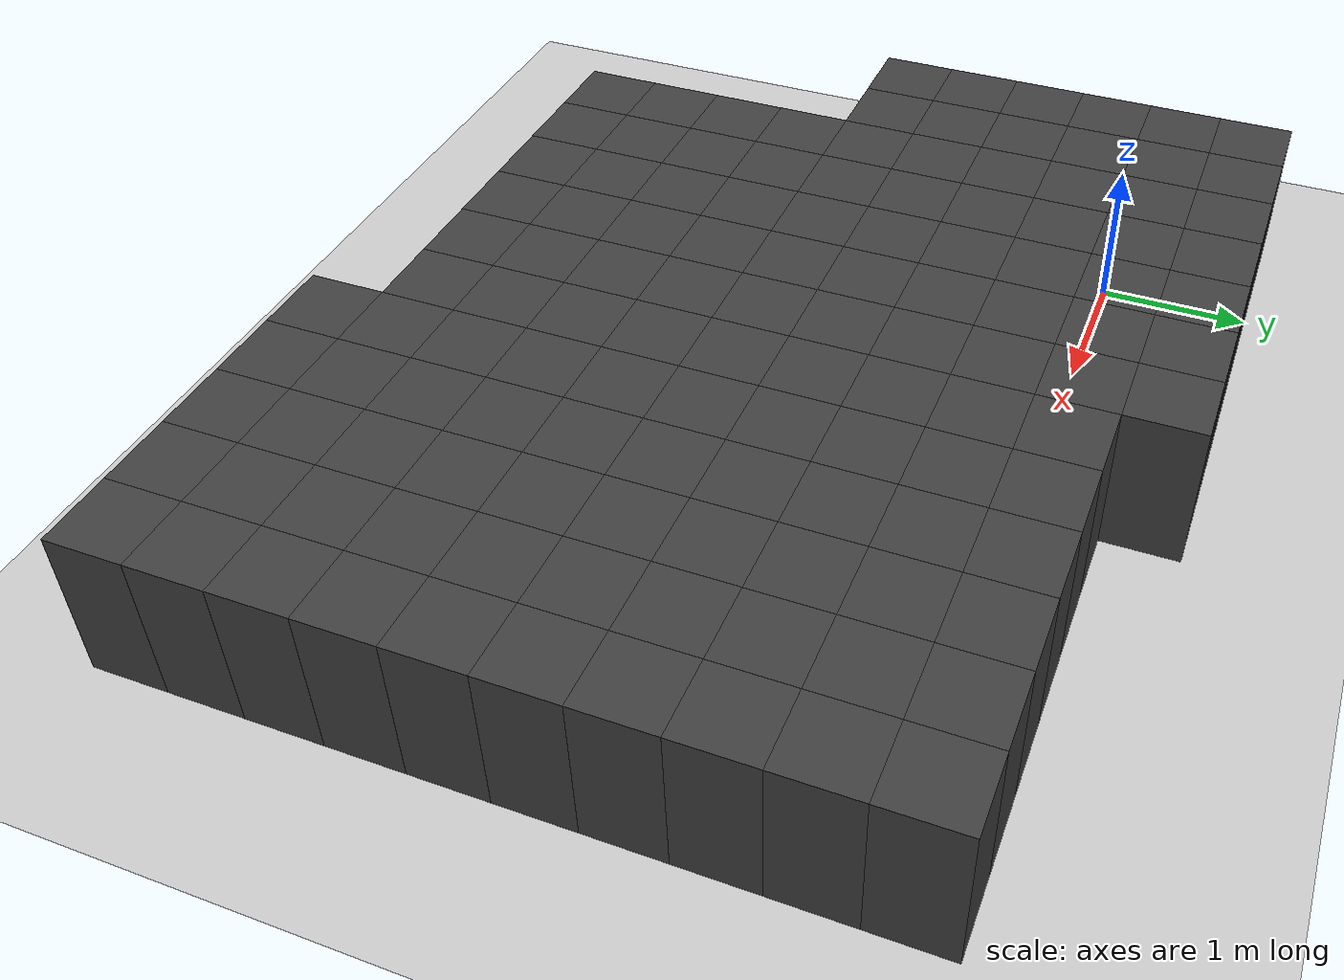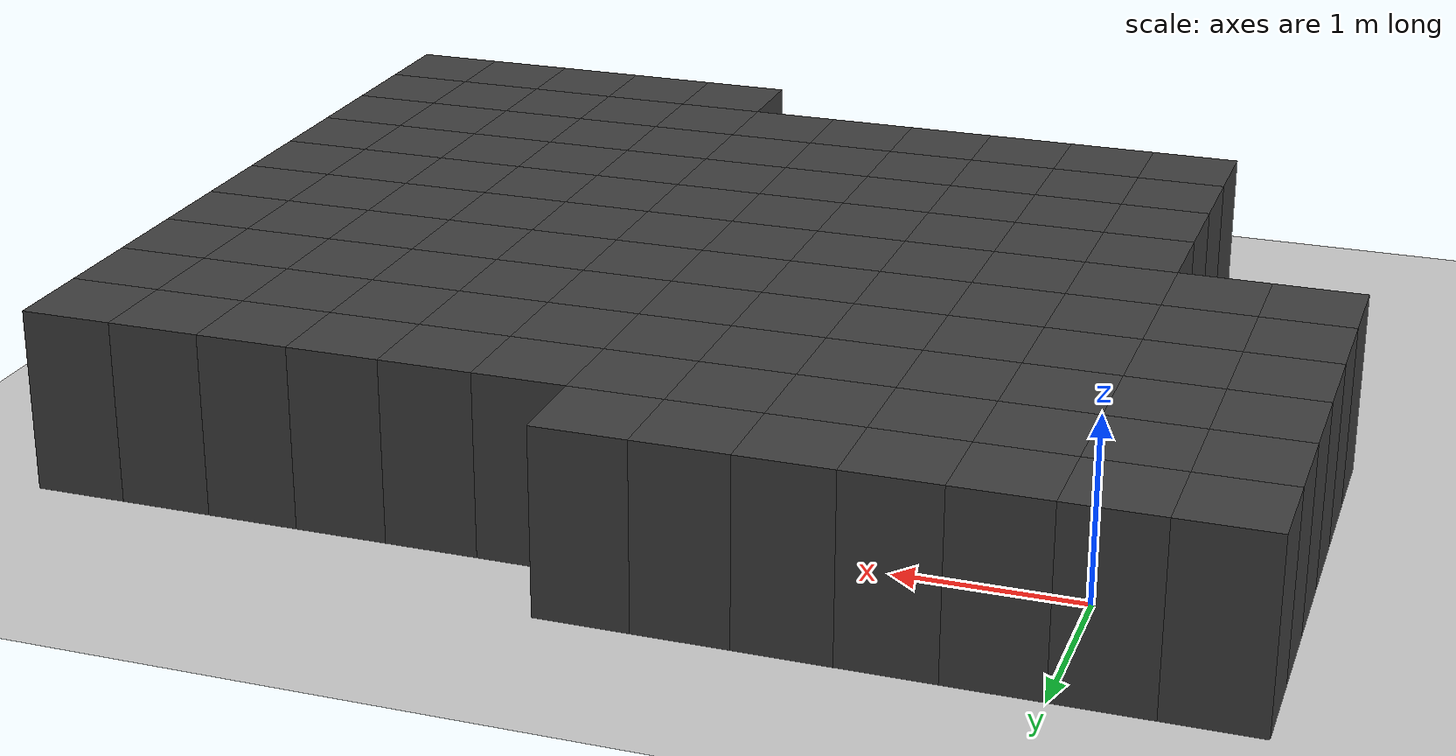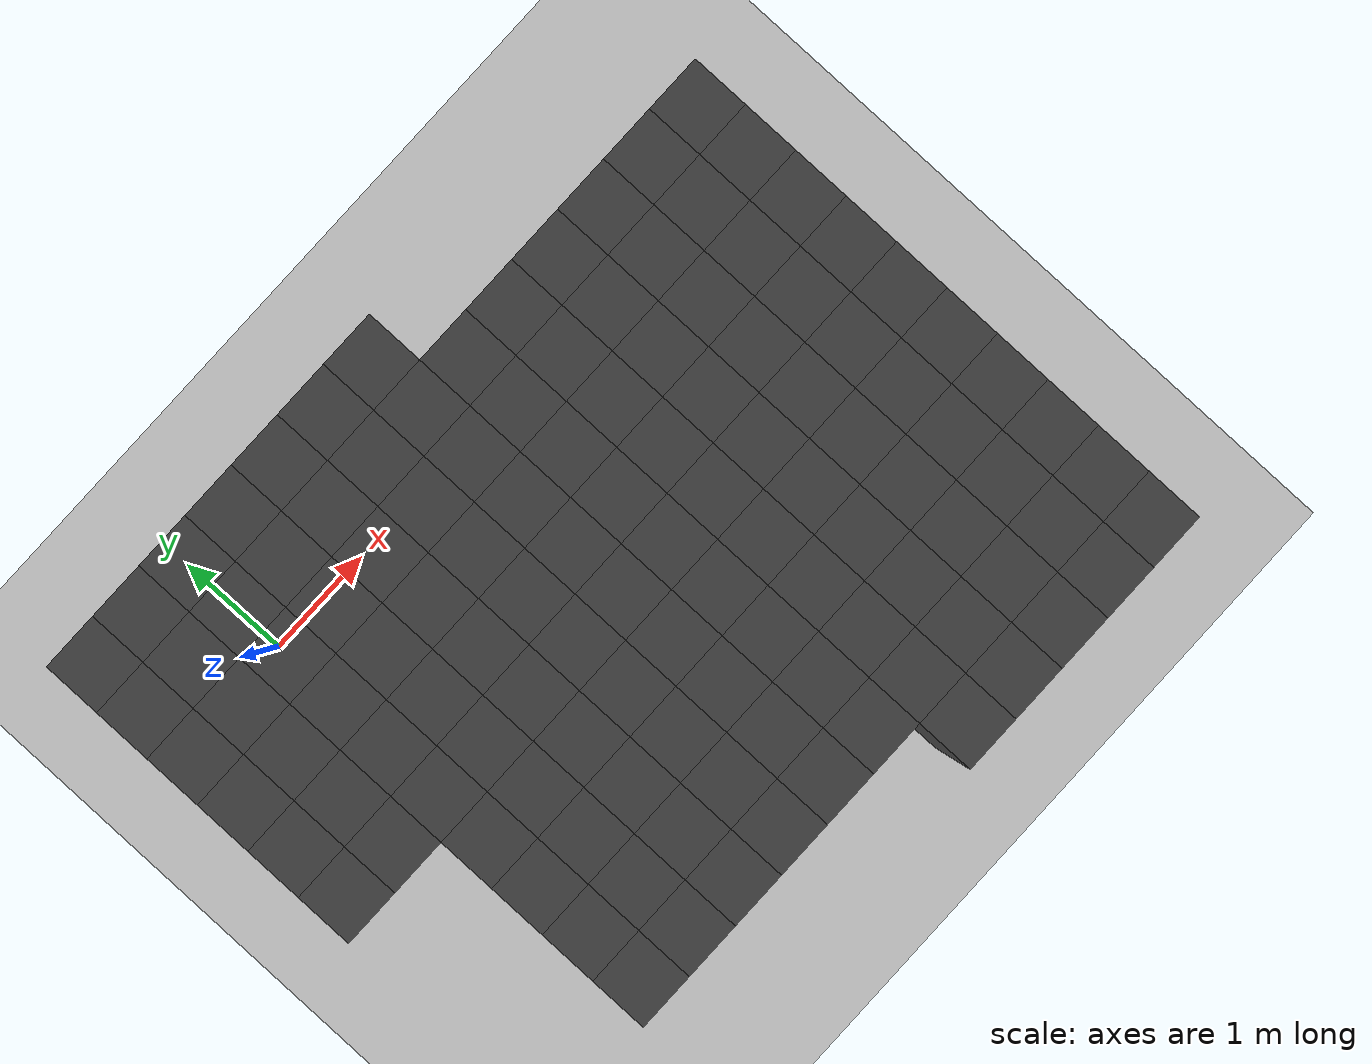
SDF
<sdf version="1.7">
 <world name="map_12885">
  <model name="ground_plane">
   <static>true</static>
   <link name="link">
    <collision name="collision">
     <geometry><plane><normal>0 0 1</normal><size>200 200</size></plane></geometry>
    </collision>
    <visual name="visual">
     <geometry><plane><normal>0 0 1</normal><size>200 200</size></plane></geometry>
     <material><ambient>0.8 0.8 0.8 1</ambient><diffuse>0.8 0.8 0.8 1</diffuse></material>
    </visual>
   </link>
  </model>
  <model name="maze_environment">
   <static>true</static>
   <link name="wall_987">
    <pose>-0.750 0.750 0.500 0 0 0</pose>
    <collision name="col"><geometry><box><size>0.5 0.5 1.0</size></box></geometry></collision>
    <visual name="vis">
     <geometry><box><size>0.5 0.5 1.0</size></box></geometry>
     <material><ambient>0.15 0.15 0.15 1</ambient><diffuse>0.25 0.25 0.25 1</diffuse></material>
    </visual>
   </link>
   <link name="wall_988">
    <pose>-0.250 0.750 0.500 0 0 0</pose>
    <collision name="col"><geometry><box><size>0.5 0.5 1.0</size></box></geometry></collision>
    <visual name="vis">
     <geometry><box><size>0.5 0.5 1.0</size></box></geometry>
     <material><ambient>0.15 0.15 0.15 1</ambient><diffuse>0.25 0.25 0.25 1</diffuse></material>
    </visual>
   </link>
   <link name="wall_989">
    <pose>0.250 0.750 0.500 0 0 0</pose>
    <collision name="col"><geometry><box><size>0.5 0.5 1.0</size></box></geometry></collision>
    <visual name="vis">
     <geometry><box><size>0.5 0.5 1.0</size></box></geometry>
     <material><ambient>0.15 0.15 0.15 1</ambient><diffuse>0.25 0.25 0.25 1</diffuse></material>
    </visual>
   </link>
   <link name="wall_990">
    <pose>0.750 0.750 0.500 0 0 0</pose>
    <collision name="col"><geometry><box><size>0.5 0.5 1.0</size></box></geometry></collision>
    <visual name="vis">
     <geometry><box><size>0.5 0.5 1.0</size></box></geometry>
     <material><ambient>0.15 0.15 0.15 1</ambient><diffuse>0.25 0.25 0.25 1</diffuse></material>
    </visual>
   </link>
   <link name="wall_991">
    <pose>1.250 0.750 0.500 0 0 0</pose>
    <collision name="col"><geometry><box><size>0.5 0.5 1.0</size></box></geometry></collision>
    <visual name="vis">
     <geometry><box><size>0.5 0.5 1.0</size></box></geometry>
     <material><ambient>0.15 0.15 0.15 1</ambient><diffuse>0.25 0.25 0.25 1</diffuse></material>
    </visual>
   </link>
   <link name="wall_992">
    <pose>1.750 0.750 0.500 0 0 0</pose>
    <collision name="col"><geometry><box><size>0.5 0.5 1.0</size></box></geometry></collision>
    <visual name="vis">
     <geometry><box><size>0.5 0.5 1.0</size></box></geometry>
     <material><ambient>0.15 0.15 0.15 1</ambient><diffuse>0.25 0.25 0.25 1</diffuse></material>
    </visual>
   </link>
   <link name="wall_993">
    <pose>2.250 0.750 0.500 0 0 0</pose>
    <collision name="col"><geometry><box><size>0.5 0.5 1.0</size></box></geometry></collision>
    <visual name="vis">
     <geometry><box><size>0.5 0.5 1.0</size></box></geometry>
     <material><ambient>0.15 0.15 0.15 1</ambient><diffuse>0.25 0.25 0.25 1</diffuse></material>
    </visual>
   </link>
   <link name="wall_1026">
    <pose>-0.750 0.250 0.500 0 0 0</pose>
    <collision name="col"><geometry><box><size>0.5 0.5 1.0</size></box></geometry></collision>
    <visual name="vis">
     <geometry><box><size>0.5 0.5 1.0</size></box></geometry>
     <material><ambient>0.15 0.15 0.15 1</ambient><diffuse>0.25 0.25 0.25 1</diffuse></material>
    </visual>
   </link>
   <link name="wall_1027">
    <pose>-0.250 0.250 0.500 0 0 0</pose>
    <collision name="col"><geometry><box><size>0.5 0.5 1.0</size></box></geometry></collision>
    <visual name="vis">
     <geometry><box><size>0.5 0.5 1.0</size></box></geometry>
     <material><ambient>0.15 0.15 0.15 1</ambient><diffuse>0.25 0.25 0.25 1</diffuse></material>
    </visual>
   </link>
   <link name="wall_1028">
    <pose>0.250 0.250 0.500 0 0 0</pose>
    <collision name="col"><geometry><box><size>0.5 0.5 1.0</size></box></geometry></collision>
    <visual name="vis">
     <geometry><box><size>0.5 0.5 1.0</size></box></geometry>
     <material><ambient>0.15 0.15 0.15 1</ambient><diffuse>0.25 0.25 0.25 1</diffuse></material>
    </visual>
   </link>
   <link name="wall_1029">
    <pose>0.750 0.250 0.500 0 0 0</pose>
    <collision name="col"><geometry><box><size>0.5 0.5 1.0</size></box></geometry></collision>
    <visual name="vis">
     <geometry><box><size>0.5 0.5 1.0</size></box></geometry>
     <material><ambient>0.15 0.15 0.15 1</ambient><diffuse>0.25 0.25 0.25 1</diffuse></material>
    </visual>
   </link>
   <link name="wall_1030">
    <pose>1.250 0.250 0.500 0 0 0</pose>
    <collision name="col"><geometry><box><size>0.5 0.5 1.0</size></box></geometry></collision>
    <visual name="vis">
     <geometry><box><size>0.5 0.5 1.0</size></box></geometry>
     <material><ambient>0.15 0.15 0.15 1</ambient><diffuse>0.25 0.25 0.25 1</diffuse></material>
    </visual>
   </link>
   <link name="wall_1031">
    <pose>1.750 0.250 0.500 0 0 0</pose>
    <collision name="col"><geometry><box><size>0.5 0.5 1.0</size></box></geometry></collision>
    <visual name="vis">
     <geometry><box><size>0.5 0.5 1.0</size></box></geometry>
     <material><ambient>0.15 0.15 0.15 1</ambient><diffuse>0.25 0.25 0.25 1</diffuse></material>
    </visual>
   </link>
   <link name="wall_1032">
    <pose>2.250 0.250 0.500 0 0 0</pose>
    <collision name="col"><geometry><box><size>0.5 0.5 1.0</size></box></geometry></collision>
    <visual name="vis">
     <geometry><box><size>0.5 0.5 1.0</size></box></geometry>
     <material><ambient>0.15 0.15 0.15 1</ambient><diffuse>0.25 0.25 0.25 1</diffuse></material>
    </visual>
   </link>
   <link name="wall_1033">
    <pose>2.750 0.250 0.500 0 0 0</pose>
    <collision name="col"><geometry><box><size>0.5 0.5 1.0</size></box></geometry></collision>
    <visual name="vis">
     <geometry><box><size>0.5 0.5 1.0</size></box></geometry>
     <material><ambient>0.15 0.15 0.15 1</ambient><diffuse>0.25 0.25 0.25 1</diffuse></material>
    </visual>
   </link>
   <link name="wall_1034">
    <pose>3.250 0.250 0.500 0 0 0</pose>
    <collision name="col"><geometry><box><size>0.5 0.5 1.0</size></box></geometry></collision>
    <visual name="vis">
     <geometry><box><size>0.5 0.5 1.0</size></box></geometry>
     <material><ambient>0.15 0.15 0.15 1</ambient><diffuse>0.25 0.25 0.25 1</diffuse></material>
    </visual>
   </link>
   <link name="wall_1035">
    <pose>3.750 0.250 0.500 0 0 0</pose>
    <collision name="col"><geometry><box><size>0.5 0.5 1.0</size></box></geometry></collision>
    <visual name="vis">
     <geometry><box><size>0.5 0.5 1.0</size></box></geometry>
     <material><ambient>0.15 0.15 0.15 1</ambient><diffuse>0.25 0.25 0.25 1</diffuse></material>
    </visual>
   </link>
   <link name="wall_1036">
    <pose>4.250 0.250 0.500 0 0 0</pose>
    <collision name="col"><geometry><box><size>0.5 0.5 1.0</size></box></geometry></collision>
    <visual name="vis">
     <geometry><box><size>0.5 0.5 1.0</size></box></geometry>
     <material><ambient>0.15 0.15 0.15 1</ambient><diffuse>0.25 0.25 0.25 1</diffuse></material>
    </visual>
   </link>
   <link name="wall_1037">
    <pose>4.750 0.250 0.500 0 0 0</pose>
    <collision name="col"><geometry><box><size>0.5 0.5 1.0</size></box></geometry></collision>
    <visual name="vis">
     <geometry><box><size>0.5 0.5 1.0</size></box></geometry>
     <material><ambient>0.15 0.15 0.15 1</ambient><diffuse>0.25 0.25 0.25 1</diffuse></material>
    </visual>
   </link>
   <link name="wall_1038">
    <pose>5.250 0.250 0.500 0 0 0</pose>
    <collision name="col"><geometry><box><size>0.5 0.5 1.0</size></box></geometry></collision>
    <visual name="vis">
     <geometry><box><size>0.5 0.5 1.0</size></box></geometry>
     <material><ambient>0.15 0.15 0.15 1</ambient><diffuse>0.25 0.25 0.25 1</diffuse></material>
    </visual>
   </link>
   <link name="wall_1059">
    <pose>-0.750 -0.250 0.500 0 0 0</pose>
    <collision name="col"><geometry><box><size>0.5 0.5 1.0</size></box></geometry></collision>
    <visual name="vis">
     <geometry><box><size>0.5 0.5 1.0</size></box></geometry>
     <material><ambient>0.15 0.15 0.15 1</ambient><diffuse>0.25 0.25 0.25 1</diffuse></material>
    </visual>
   </link>
   <link name="wall_1060">
    <pose>-0.250 -0.250 0.500 0 0 0</pose>
    <collision name="col"><geometry><box><size>0.5 0.5 1.0</size></box></geometry></collision>
    <visual name="vis">
     <geometry><box><size>0.5 0.5 1.0</size></box></geometry>
     <material><ambient>0.15 0.15 0.15 1</ambient><diffuse>0.25 0.25 0.25 1</diffuse></material>
    </visual>
   </link>
   <link name="wall_1061">
    <pose>0.250 -0.250 0.500 0 0 0</pose>
    <collision name="col"><geometry><box><size>0.5 0.5 1.0</size></box></geometry></collision>
    <visual name="vis">
     <geometry><box><size>0.5 0.5 1.0</size></box></geometry>
     <material><ambient>0.15 0.15 0.15 1</ambient><diffuse>0.25 0.25 0.25 1</diffuse></material>
    </visual>
   </link>
   <link name="wall_1062">
    <pose>0.750 -0.250 0.500 0 0 0</pose>
    <collision name="col"><geometry><box><size>0.5 0.5 1.0</size></box></geometry></collision>
    <visual name="vis">
     <geometry><box><size>0.5 0.5 1.0</size></box></geometry>
     <material><ambient>0.15 0.15 0.15 1</ambient><diffuse>0.25 0.25 0.25 1</diffuse></material>
    </visual>
   </link>
   <link name="wall_1063">
    <pose>1.250 -0.250 0.500 0 0 0</pose>
    <collision name="col"><geometry><box><size>0.5 0.5 1.0</size></box></geometry></collision>
    <visual name="vis">
     <geometry><box><size>0.5 0.5 1.0</size></box></geometry>
     <material><ambient>0.15 0.15 0.15 1</ambient><diffuse>0.25 0.25 0.25 1</diffuse></material>
    </visual>
   </link>
   <link name="wall_1064">
    <pose>1.750 -0.250 0.500 0 0 0</pose>
    <collision name="col"><geometry><box><size>0.5 0.5 1.0</size></box></geometry></collision>
    <visual name="vis">
     <geometry><box><size>0.5 0.5 1.0</size></box></geometry>
     <material><ambient>0.15 0.15 0.15 1</ambient><diffuse>0.25 0.25 0.25 1</diffuse></material>
    </visual>
   </link>
   <link name="wall_1065">
    <pose>2.250 -0.250 0.500 0 0 0</pose>
    <collision name="col"><geometry><box><size>0.5 0.5 1.0</size></box></geometry></collision>
    <visual name="vis">
     <geometry><box><size>0.5 0.5 1.0</size></box></geometry>
     <material><ambient>0.15 0.15 0.15 1</ambient><diffuse>0.25 0.25 0.25 1</diffuse></material>
    </visual>
   </link>
   <link name="wall_1066">
    <pose>2.750 -0.250 0.500 0 0 0</pose>
    <collision name="col"><geometry><box><size>0.5 0.5 1.0</size></box></geometry></collision>
    <visual name="vis">
     <geometry><box><size>0.5 0.5 1.0</size></box></geometry>
     <material><ambient>0.15 0.15 0.15 1</ambient><diffuse>0.25 0.25 0.25 1</diffuse></material>
    </visual>
   </link>
   <link name="wall_1067">
    <pose>3.250 -0.250 0.500 0 0 0</pose>
    <collision name="col"><geometry><box><size>0.5 0.5 1.0</size></box></geometry></collision>
    <visual name="vis">
     <geometry><box><size>0.5 0.5 1.0</size></box></geometry>
     <material><ambient>0.15 0.15 0.15 1</ambient><diffuse>0.25 0.25 0.25 1</diffuse></material>
    </visual>
   </link>
   <link name="wall_1068">
    <pose>3.750 -0.250 0.500 0 0 0</pose>
    <collision name="col"><geometry><box><size>0.5 0.5 1.0</size></box></geometry></collision>
    <visual name="vis">
     <geometry><box><size>0.5 0.5 1.0</size></box></geometry>
     <material><ambient>0.15 0.15 0.15 1</ambient><diffuse>0.25 0.25 0.25 1</diffuse></material>
    </visual>
   </link>
   <link name="wall_1069">
    <pose>4.250 -0.250 0.500 0 0 0</pose>
    <collision name="col"><geometry><box><size>0.5 0.5 1.0</size></box></geometry></collision>
    <visual name="vis">
     <geometry><box><size>0.5 0.5 1.0</size></box></geometry>
     <material><ambient>0.15 0.15 0.15 1</ambient><diffuse>0.25 0.25 0.25 1</diffuse></material>
    </visual>
   </link>
   <link name="wall_1070">
    <pose>4.750 -0.250 0.500 0 0 0</pose>
    <collision name="col"><geometry><box><size>0.5 0.5 1.0</size></box></geometry></collision>
    <visual name="vis">
     <geometry><box><size>0.5 0.5 1.0</size></box></geometry>
     <material><ambient>0.15 0.15 0.15 1</ambient><diffuse>0.25 0.25 0.25 1</diffuse></material>
    </visual>
   </link>
   <link name="wall_1071">
    <pose>5.250 -0.250 0.500 0 0 0</pose>
    <collision name="col"><geometry><box><size>0.5 0.5 1.0</size></box></geometry></collision>
    <visual name="vis">
     <geometry><box><size>0.5 0.5 1.0</size></box></geometry>
     <material><ambient>0.15 0.15 0.15 1</ambient><diffuse>0.25 0.25 0.25 1</diffuse></material>
    </visual>
   </link>
   <link name="wall_1093">
    <pose>-0.750 -0.750 0.500 0 0 0</pose>
    <collision name="col"><geometry><box><size>0.5 0.5 1.0</size></box></geometry></collision>
    <visual name="vis">
     <geometry><box><size>0.5 0.5 1.0</size></box></geometry>
     <material><ambient>0.15 0.15 0.15 1</ambient><diffuse>0.25 0.25 0.25 1</diffuse></material>
    </visual>
   </link>
   <link name="wall_1094">
    <pose>-0.250 -0.750 0.500 0 0 0</pose>
    <collision name="col"><geometry><box><size>0.5 0.5 1.0</size></box></geometry></collision>
    <visual name="vis">
     <geometry><box><size>0.5 0.5 1.0</size></box></geometry>
     <material><ambient>0.15 0.15 0.15 1</ambient><diffuse>0.25 0.25 0.25 1</diffuse></material>
    </visual>
   </link>
   <link name="wall_1095">
    <pose>0.250 -0.750 0.500 0 0 0</pose>
    <collision name="col"><geometry><box><size>0.5 0.5 1.0</size></box></geometry></collision>
    <visual name="vis">
     <geometry><box><size>0.5 0.5 1.0</size></box></geometry>
     <material><ambient>0.15 0.15 0.15 1</ambient><diffuse>0.25 0.25 0.25 1</diffuse></material>
    </visual>
   </link>
   <link name="wall_1096">
    <pose>0.750 -0.750 0.500 0 0 0</pose>
    <collision name="col"><geometry><box><size>0.5 0.5 1.0</size></box></geometry></collision>
    <visual name="vis">
     <geometry><box><size>0.5 0.5 1.0</size></box></geometry>
     <material><ambient>0.15 0.15 0.15 1</ambient><diffuse>0.25 0.25 0.25 1</diffuse></material>
    </visual>
   </link>
   <link name="wall_1097">
    <pose>1.250 -0.750 0.500 0 0 0</pose>
    <collision name="col"><geometry><box><size>0.5 0.5 1.0</size></box></geometry></collision>
    <visual name="vis">
     <geometry><box><size>0.5 0.5 1.0</size></box></geometry>
     <material><ambient>0.15 0.15 0.15 1</ambient><diffuse>0.25 0.25 0.25 1</diffuse></material>
    </visual>
   </link>
   <link name="wall_1098">
    <pose>1.750 -0.750 0.500 0 0 0</pose>
    <collision name="col"><geometry><box><size>0.5 0.5 1.0</size></box></geometry></collision>
    <visual name="vis">
     <geometry><box><size>0.5 0.5 1.0</size></box></geometry>
     <material><ambient>0.15 0.15 0.15 1</ambient><diffuse>0.25 0.25 0.25 1</diffuse></material>
    </visual>
   </link>
   <link name="wall_1099">
    <pose>2.250 -0.750 0.500 0 0 0</pose>
    <collision name="col"><geometry><box><size>0.5 0.5 1.0</size></box></geometry></collision>
    <visual name="vis">
     <geometry><box><size>0.5 0.5 1.0</size></box></geometry>
     <material><ambient>0.15 0.15 0.15 1</ambient><diffuse>0.25 0.25 0.25 1</diffuse></material>
    </visual>
   </link>
   <link name="wall_1100">
    <pose>2.750 -0.750 0.500 0 0 0</pose>
    <collision name="col"><geometry><box><size>0.5 0.5 1.0</size></box></geometry></collision>
    <visual name="vis">
     <geometry><box><size>0.5 0.5 1.0</size></box></geometry>
     <material><ambient>0.15 0.15 0.15 1</ambient><diffuse>0.25 0.25 0.25 1</diffuse></material>
    </visual>
   </link>
   <link name="wall_1101">
    <pose>3.250 -0.750 0.500 0 0 0</pose>
    <collision name="col"><geometry><box><size>0.5 0.5 1.0</size></box></geometry></collision>
    <visual name="vis">
     <geometry><box><size>0.5 0.5 1.0</size></box></geometry>
     <material><ambient>0.15 0.15 0.15 1</ambient><diffuse>0.25 0.25 0.25 1</diffuse></material>
    </visual>
   </link>
   <link name="wall_1102">
    <pose>3.750 -0.750 0.500 0 0 0</pose>
    <collision name="col"><geometry><box><size>0.5 0.5 1.0</size></box></geometry></collision>
    <visual name="vis">
     <geometry><box><size>0.5 0.5 1.0</size></box></geometry>
     <material><ambient>0.15 0.15 0.15 1</ambient><diffuse>0.25 0.25 0.25 1</diffuse></material>
    </visual>
   </link>
   <link name="wall_1103">
    <pose>4.250 -0.750 0.500 0 0 0</pose>
    <collision name="col"><geometry><box><size>0.5 0.5 1.0</size></box></geometry></collision>
    <visual name="vis">
     <geometry><box><size>0.5 0.5 1.0</size></box></geometry>
     <material><ambient>0.15 0.15 0.15 1</ambient><diffuse>0.25 0.25 0.25 1</diffuse></material>
    </visual>
   </link>
   <link name="wall_1104">
    <pose>4.750 -0.750 0.500 0 0 0</pose>
    <collision name="col"><geometry><box><size>0.5 0.5 1.0</size></box></geometry></collision>
    <visual name="vis">
     <geometry><box><size>0.5 0.5 1.0</size></box></geometry>
     <material><ambient>0.15 0.15 0.15 1</ambient><diffuse>0.25 0.25 0.25 1</diffuse></material>
    </visual>
   </link>
   <link name="wall_1105">
    <pose>5.250 -0.750 0.500 0 0 0</pose>
    <collision name="col"><geometry><box><size>0.5 0.5 1.0</size></box></geometry></collision>
    <visual name="vis">
     <geometry><box><size>0.5 0.5 1.0</size></box></geometry>
     <material><ambient>0.15 0.15 0.15 1</ambient><diffuse>0.25 0.25 0.25 1</diffuse></material>
    </visual>
   </link>
   <link name="wall_1122">
    <pose>-0.750 -1.250 0.500 0 0 0</pose>
    <collision name="col"><geometry><box><size>0.5 0.5 1.0</size></box></geometry></collision>
    <visual name="vis">
     <geometry><box><size>0.5 0.5 1.0</size></box></geometry>
     <material><ambient>0.15 0.15 0.15 1</ambient><diffuse>0.25 0.25 0.25 1</diffuse></material>
    </visual>
   </link>
   <link name="wall_1123">
    <pose>-0.250 -1.250 0.500 0 0 0</pose>
    <collision name="col"><geometry><box><size>0.5 0.5 1.0</size></box></geometry></collision>
    <visual name="vis">
     <geometry><box><size>0.5 0.5 1.0</size></box></geometry>
     <material><ambient>0.15 0.15 0.15 1</ambient><diffuse>0.25 0.25 0.25 1</diffuse></material>
    </visual>
   </link>
   <link name="wall_1124">
    <pose>0.250 -1.250 0.500 0 0 0</pose>
    <collision name="col"><geometry><box><size>0.5 0.5 1.0</size></box></geometry></collision>
    <visual name="vis">
     <geometry><box><size>0.5 0.5 1.0</size></box></geometry>
     <material><ambient>0.15 0.15 0.15 1</ambient><diffuse>0.25 0.25 0.25 1</diffuse></material>
    </visual>
   </link>
   <link name="wall_1125">
    <pose>0.750 -1.250 0.500 0 0 0</pose>
    <collision name="col"><geometry><box><size>0.5 0.5 1.0</size></box></geometry></collision>
    <visual name="vis">
     <geometry><box><size>0.5 0.5 1.0</size></box></geometry>
     <material><ambient>0.15 0.15 0.15 1</ambient><diffuse>0.25 0.25 0.25 1</diffuse></material>
    </visual>
   </link>
   <link name="wall_1126">
    <pose>1.250 -1.250 0.500 0 0 0</pose>
    <collision name="col"><geometry><box><size>0.5 0.5 1.0</size></box></geometry></collision>
    <visual name="vis">
     <geometry><box><size>0.5 0.5 1.0</size></box></geometry>
     <material><ambient>0.15 0.15 0.15 1</ambient><diffuse>0.25 0.25 0.25 1</diffuse></material>
    </visual>
   </link>
   <link name="wall_1127">
    <pose>1.750 -1.250 0.500 0 0 0</pose>
    <collision name="col"><geometry><box><size>0.5 0.5 1.0</size></box></geometry></collision>
    <visual name="vis">
     <geometry><box><size>0.5 0.5 1.0</size></box></geometry>
     <material><ambient>0.15 0.15 0.15 1</ambient><diffuse>0.25 0.25 0.25 1</diffuse></material>
    </visual>
   </link>
   <link name="wall_1128">
    <pose>2.250 -1.250 0.500 0 0 0</pose>
    <collision name="col"><geometry><box><size>0.5 0.5 1.0</size></box></geometry></collision>
    <visual name="vis">
     <geometry><box><size>0.5 0.5 1.0</size></box></geometry>
     <material><ambient>0.15 0.15 0.15 1</ambient><diffuse>0.25 0.25 0.25 1</diffuse></material>
    </visual>
   </link>
   <link name="wall_1129">
    <pose>2.750 -1.250 0.500 0 0 0</pose>
    <collision name="col"><geometry><box><size>0.5 0.5 1.0</size></box></geometry></collision>
    <visual name="vis">
     <geometry><box><size>0.5 0.5 1.0</size></box></geometry>
     <material><ambient>0.15 0.15 0.15 1</ambient><diffuse>0.25 0.25 0.25 1</diffuse></material>
    </visual>
   </link>
   <link name="wall_1130">
    <pose>3.250 -1.250 0.500 0 0 0</pose>
    <collision name="col"><geometry><box><size>0.5 0.5 1.0</size></box></geometry></collision>
    <visual name="vis">
     <geometry><box><size>0.5 0.5 1.0</size></box></geometry>
     <material><ambient>0.15 0.15 0.15 1</ambient><diffuse>0.25 0.25 0.25 1</diffuse></material>
    </visual>
   </link>
   <link name="wall_1131">
    <pose>3.750 -1.250 0.500 0 0 0</pose>
    <collision name="col"><geometry><box><size>0.5 0.5 1.0</size></box></geometry></collision>
    <visual name="vis">
     <geometry><box><size>0.5 0.5 1.0</size></box></geometry>
     <material><ambient>0.15 0.15 0.15 1</ambient><diffuse>0.25 0.25 0.25 1</diffuse></material>
    </visual>
   </link>
   <link name="wall_1132">
    <pose>4.250 -1.250 0.500 0 0 0</pose>
    <collision name="col"><geometry><box><size>0.5 0.5 1.0</size></box></geometry></collision>
    <visual name="vis">
     <geometry><box><size>0.5 0.5 1.0</size></box></geometry>
     <material><ambient>0.15 0.15 0.15 1</ambient><diffuse>0.25 0.25 0.25 1</diffuse></material>
    </visual>
   </link>
   <link name="wall_1133">
    <pose>4.750 -1.250 0.500 0 0 0</pose>
    <collision name="col"><geometry><box><size>0.5 0.5 1.0</size></box></geometry></collision>
    <visual name="vis">
     <geometry><box><size>0.5 0.5 1.0</size></box></geometry>
     <material><ambient>0.15 0.15 0.15 1</ambient><diffuse>0.25 0.25 0.25 1</diffuse></material>
    </visual>
   </link>
   <link name="wall_1134">
    <pose>5.250 -1.250 0.500 0 0 0</pose>
    <collision name="col"><geometry><box><size>0.5 0.5 1.0</size></box></geometry></collision>
    <visual name="vis">
     <geometry><box><size>0.5 0.5 1.0</size></box></geometry>
     <material><ambient>0.15 0.15 0.15 1</ambient><diffuse>0.25 0.25 0.25 1</diffuse></material>
    </visual>
   </link>
   <link name="wall_1167">
    <pose>-0.750 -1.750 0.500 0 0 0</pose>
    <collision name="col"><geometry><box><size>0.5 0.5 1.0</size></box></geometry></collision>
    <visual name="vis">
     <geometry><box><size>0.5 0.5 1.0</size></box></geometry>
     <material><ambient>0.15 0.15 0.15 1</ambient><diffuse>0.25 0.25 0.25 1</diffuse></material>
    </visual>
   </link>
   <link name="wall_1168">
    <pose>-0.250 -1.750 0.500 0 0 0</pose>
    <collision name="col"><geometry><box><size>0.5 0.5 1.0</size></box></geometry></collision>
    <visual name="vis">
     <geometry><box><size>0.5 0.5 1.0</size></box></geometry>
     <material><ambient>0.15 0.15 0.15 1</ambient><diffuse>0.25 0.25 0.25 1</diffuse></material>
    </visual>
   </link>
   <link name="wall_1169">
    <pose>0.250 -1.750 0.500 0 0 0</pose>
    <collision name="col"><geometry><box><size>0.5 0.5 1.0</size></box></geometry></collision>
    <visual name="vis">
     <geometry><box><size>0.5 0.5 1.0</size></box></geometry>
     <material><ambient>0.15 0.15 0.15 1</ambient><diffuse>0.25 0.25 0.25 1</diffuse></material>
    </visual>
   </link>
   <link name="wall_1170">
    <pose>0.750 -1.750 0.500 0 0 0</pose>
    <collision name="col"><geometry><box><size>0.5 0.5 1.0</size></box></geometry></collision>
    <visual name="vis">
     <geometry><box><size>0.5 0.5 1.0</size></box></geometry>
     <material><ambient>0.15 0.15 0.15 1</ambient><diffuse>0.25 0.25 0.25 1</diffuse></material>
    </visual>
   </link>
   <link name="wall_1171">
    <pose>1.250 -1.750 0.500 0 0 0</pose>
    <collision name="col"><geometry><box><size>0.5 0.5 1.0</size></box></geometry></collision>
    <visual name="vis">
     <geometry><box><size>0.5 0.5 1.0</size></box></geometry>
     <material><ambient>0.15 0.15 0.15 1</ambient><diffuse>0.25 0.25 0.25 1</diffuse></material>
    </visual>
   </link>
   <link name="wall_1172">
    <pose>1.750 -1.750 0.500 0 0 0</pose>
    <collision name="col"><geometry><box><size>0.5 0.5 1.0</size></box></geometry></collision>
    <visual name="vis">
     <geometry><box><size>0.5 0.5 1.0</size></box></geometry>
     <material><ambient>0.15 0.15 0.15 1</ambient><diffuse>0.25 0.25 0.25 1</diffuse></material>
    </visual>
   </link>
   <link name="wall_1173">
    <pose>2.250 -1.750 0.500 0 0 0</pose>
    <collision name="col"><geometry><box><size>0.5 0.5 1.0</size></box></geometry></collision>
    <visual name="vis">
     <geometry><box><size>0.5 0.5 1.0</size></box></geometry>
     <material><ambient>0.15 0.15 0.15 1</ambient><diffuse>0.25 0.25 0.25 1</diffuse></material>
    </visual>
   </link>
   <link name="wall_1174">
    <pose>2.750 -1.750 0.500 0 0 0</pose>
    <collision name="col"><geometry><box><size>0.5 0.5 1.0</size></box></geometry></collision>
    <visual name="vis">
     <geometry><box><size>0.5 0.5 1.0</size></box></geometry>
     <material><ambient>0.15 0.15 0.15 1</ambient><diffuse>0.25 0.25 0.25 1</diffuse></material>
    </visual>
   </link>
   <link name="wall_1175">
    <pose>3.250 -1.750 0.500 0 0 0</pose>
    <collision name="col"><geometry><box><size>0.5 0.5 1.0</size></box></geometry></collision>
    <visual name="vis">
     <geometry><box><size>0.5 0.5 1.0</size></box></geometry>
     <material><ambient>0.15 0.15 0.15 1</ambient><diffuse>0.25 0.25 0.25 1</diffuse></material>
    </visual>
   </link>
   <link name="wall_1176">
    <pose>3.750 -1.750 0.500 0 0 0</pose>
    <collision name="col"><geometry><box><size>0.5 0.5 1.0</size></box></geometry></collision>
    <visual name="vis">
     <geometry><box><size>0.5 0.5 1.0</size></box></geometry>
     <material><ambient>0.15 0.15 0.15 1</ambient><diffuse>0.25 0.25 0.25 1</diffuse></material>
    </visual>
   </link>
   <link name="wall_1177">
    <pose>4.250 -1.750 0.500 0 0 0</pose>
    <collision name="col"><geometry><box><size>0.5 0.5 1.0</size></box></geometry></collision>
    <visual name="vis">
     <geometry><box><size>0.5 0.5 1.0</size></box></geometry>
     <material><ambient>0.15 0.15 0.15 1</ambient><diffuse>0.25 0.25 0.25 1</diffuse></material>
    </visual>
   </link>
   <link name="wall_1178">
    <pose>4.750 -1.750 0.500 0 0 0</pose>
    <collision name="col"><geometry><box><size>0.5 0.5 1.0</size></box></geometry></collision>
    <visual name="vis">
     <geometry><box><size>0.5 0.5 1.0</size></box></geometry>
     <material><ambient>0.15 0.15 0.15 1</ambient><diffuse>0.25 0.25 0.25 1</diffuse></material>
    </visual>
   </link>
   <link name="wall_1179">
    <pose>5.250 -1.750 0.500 0 0 0</pose>
    <collision name="col"><geometry><box><size>0.5 0.5 1.0</size></box></geometry></collision>
    <visual name="vis">
     <geometry><box><size>0.5 0.5 1.0</size></box></geometry>
     <material><ambient>0.15 0.15 0.15 1</ambient><diffuse>0.25 0.25 0.25 1</diffuse></material>
    </visual>
   </link>
   <link name="wall_1210">
    <pose>0.250 -2.250 0.500 0 0 0</pose>
    <collision name="col"><geometry><box><size>0.5 0.5 1.0</size></box></geometry></collision>
    <visual name="vis">
     <geometry><box><size>0.5 0.5 1.0</size></box></geometry>
     <material><ambient>0.15 0.15 0.15 1</ambient><diffuse>0.25 0.25 0.25 1</diffuse></material>
    </visual>
   </link>
   <link name="wall_1211">
    <pose>0.750 -2.250 0.500 0 0 0</pose>
    <collision name="col"><geometry><box><size>0.5 0.5 1.0</size></box></geometry></collision>
    <visual name="vis">
     <geometry><box><size>0.5 0.5 1.0</size></box></geometry>
     <material><ambient>0.15 0.15 0.15 1</ambient><diffuse>0.25 0.25 0.25 1</diffuse></material>
    </visual>
   </link>
   <link name="wall_1212">
    <pose>1.250 -2.250 0.500 0 0 0</pose>
    <collision name="col"><geometry><box><size>0.5 0.5 1.0</size></box></geometry></collision>
    <visual name="vis">
     <geometry><box><size>0.5 0.5 1.0</size></box></geometry>
     <material><ambient>0.15 0.15 0.15 1</ambient><diffuse>0.25 0.25 0.25 1</diffuse></material>
    </visual>
   </link>
   <link name="wall_1213">
    <pose>1.750 -2.250 0.500 0 0 0</pose>
    <collision name="col"><geometry><box><size>0.5 0.5 1.0</size></box></geometry></collision>
    <visual name="vis">
     <geometry><box><size>0.5 0.5 1.0</size></box></geometry>
     <material><ambient>0.15 0.15 0.15 1</ambient><diffuse>0.25 0.25 0.25 1</diffuse></material>
    </visual>
   </link>
   <link name="wall_1214">
    <pose>2.250 -2.250 0.500 0 0 0</pose>
    <collision name="col"><geometry><box><size>0.5 0.5 1.0</size></box></geometry></collision>
    <visual name="vis">
     <geometry><box><size>0.5 0.5 1.0</size></box></geometry>
     <material><ambient>0.15 0.15 0.15 1</ambient><diffuse>0.25 0.25 0.25 1</diffuse></material>
    </visual>
   </link>
   <link name="wall_1215">
    <pose>2.750 -2.250 0.500 0 0 0</pose>
    <collision name="col"><geometry><box><size>0.5 0.5 1.0</size></box></geometry></collision>
    <visual name="vis">
     <geometry><box><size>0.5 0.5 1.0</size></box></geometry>
     <material><ambient>0.15 0.15 0.15 1</ambient><diffuse>0.25 0.25 0.25 1</diffuse></material>
    </visual>
   </link>
   <link name="wall_1216">
    <pose>3.250 -2.250 0.500 0 0 0</pose>
    <collision name="col"><geometry><box><size>0.5 0.5 1.0</size></box></geometry></collision>
    <visual name="vis">
     <geometry><box><size>0.5 0.5 1.0</size></box></geometry>
     <material><ambient>0.15 0.15 0.15 1</ambient><diffuse>0.25 0.25 0.25 1</diffuse></material>
    </visual>
   </link>
   <link name="wall_1217">
    <pose>3.750 -2.250 0.500 0 0 0</pose>
    <collision name="col"><geometry><box><size>0.5 0.5 1.0</size></box></geometry></collision>
    <visual name="vis">
     <geometry><box><size>0.5 0.5 1.0</size></box></geometry>
     <material><ambient>0.15 0.15 0.15 1</ambient><diffuse>0.25 0.25 0.25 1</diffuse></material>
    </visual>
   </link>
   <link name="wall_1218">
    <pose>4.250 -2.250 0.500 0 0 0</pose>
    <collision name="col"><geometry><box><size>0.5 0.5 1.0</size></box></geometry></collision>
    <visual name="vis">
     <geometry><box><size>0.5 0.5 1.0</size></box></geometry>
     <material><ambient>0.15 0.15 0.15 1</ambient><diffuse>0.25 0.25 0.25 1</diffuse></material>
    </visual>
   </link>
   <link name="wall_1219">
    <pose>4.750 -2.250 0.500 0 0 0</pose>
    <collision name="col"><geometry><box><size>0.5 0.5 1.0</size></box></geometry></collision>
    <visual name="vis">
     <geometry><box><size>0.5 0.5 1.0</size></box></geometry>
     <material><ambient>0.15 0.15 0.15 1</ambient><diffuse>0.25 0.25 0.25 1</diffuse></material>
    </visual>
   </link>
   <link name="wall_1220">
    <pose>5.250 -2.250 0.500 0 0 0</pose>
    <collision name="col"><geometry><box><size>0.5 0.5 1.0</size></box></geometry></collision>
    <visual name="vis">
     <geometry><box><size>0.5 0.5 1.0</size></box></geometry>
     <material><ambient>0.15 0.15 0.15 1</ambient><diffuse>0.25 0.25 0.25 1</diffuse></material>
    </visual>
   </link>
   <link name="wall_1251">
    <pose>0.250 -2.750 0.500 0 0 0</pose>
    <collision name="col"><geometry><box><size>0.5 0.5 1.0</size></box></geometry></collision>
    <visual name="vis">
     <geometry><box><size>0.5 0.5 1.0</size></box></geometry>
     <material><ambient>0.15 0.15 0.15 1</ambient><diffuse>0.25 0.25 0.25 1</diffuse></material>
    </visual>
   </link>
   <link name="wall_1252">
    <pose>0.750 -2.750 0.500 0 0 0</pose>
    <collision name="col"><geometry><box><size>0.5 0.5 1.0</size></box></geometry></collision>
    <visual name="vis">
     <geometry><box><size>0.5 0.5 1.0</size></box></geometry>
     <material><ambient>0.15 0.15 0.15 1</ambient><diffuse>0.25 0.25 0.25 1</diffuse></material>
    </visual>
   </link>
   <link name="wall_1253">
    <pose>1.250 -2.750 0.500 0 0 0</pose>
    <collision name="col"><geometry><box><size>0.5 0.5 1.0</size></box></geometry></collision>
    <visual name="vis">
     <geometry><box><size>0.5 0.5 1.0</size></box></geometry>
     <material><ambient>0.15 0.15 0.15 1</ambient><diffuse>0.25 0.25 0.25 1</diffuse></material>
    </visual>
   </link>
   <link name="wall_1254">
    <pose>1.750 -2.750 0.500 0 0 0</pose>
    <collision name="col"><geometry><box><size>0.5 0.5 1.0</size></box></geometry></collision>
    <visual name="vis">
     <geometry><box><size>0.5 0.5 1.0</size></box></geometry>
     <material><ambient>0.15 0.15 0.15 1</ambient><diffuse>0.25 0.25 0.25 1</diffuse></material>
    </visual>
   </link>
   <link name="wall_1255">
    <pose>2.250 -2.750 0.500 0 0 0</pose>
    <collision name="col"><geometry><box><size>0.5 0.5 1.0</size></box></geometry></collision>
    <visual name="vis">
     <geometry><box><size>0.5 0.5 1.0</size></box></geometry>
     <material><ambient>0.15 0.15 0.15 1</ambient><diffuse>0.25 0.25 0.25 1</diffuse></material>
    </visual>
   </link>
   <link name="wall_1256">
    <pose>2.750 -2.750 0.500 0 0 0</pose>
    <collision name="col"><geometry><box><size>0.5 0.5 1.0</size></box></geometry></collision>
    <visual name="vis">
     <geometry><box><size>0.5 0.5 1.0</size></box></geometry>
     <material><ambient>0.15 0.15 0.15 1</ambient><diffuse>0.25 0.25 0.25 1</diffuse></material>
    </visual>
   </link>
   <link name="wall_1257">
    <pose>3.250 -2.750 0.500 0 0 0</pose>
    <collision name="col"><geometry><box><size>0.5 0.5 1.0</size></box></geometry></collision>
    <visual name="vis">
     <geometry><box><size>0.5 0.5 1.0</size></box></geometry>
     <material><ambient>0.15 0.15 0.15 1</ambient><diffuse>0.25 0.25 0.25 1</diffuse></material>
    </visual>
   </link>
   <link name="wall_1258">
    <pose>3.750 -2.750 0.500 0 0 0</pose>
    <collision name="col"><geometry><box><size>0.5 0.5 1.0</size></box></geometry></collision>
    <visual name="vis">
     <geometry><box><size>0.5 0.5 1.0</size></box></geometry>
     <material><ambient>0.15 0.15 0.15 1</ambient><diffuse>0.25 0.25 0.25 1</diffuse></material>
    </visual>
   </link>
   <link name="wall_1259">
    <pose>4.250 -2.750 0.500 0 0 0</pose>
    <collision name="col"><geometry><box><size>0.5 0.5 1.0</size></box></geometry></collision>
    <visual name="vis">
     <geometry><box><size>0.5 0.5 1.0</size></box></geometry>
     <material><ambient>0.15 0.15 0.15 1</ambient><diffuse>0.25 0.25 0.25 1</diffuse></material>
    </visual>
   </link>
   <link name="wall_1260">
    <pose>4.750 -2.750 0.500 0 0 0</pose>
    <collision name="col"><geometry><box><size>0.5 0.5 1.0</size></box></geometry></collision>
    <visual name="vis">
     <geometry><box><size>0.5 0.5 1.0</size></box></geometry>
     <material><ambient>0.15 0.15 0.15 1</ambient><diffuse>0.25 0.25 0.25 1</diffuse></material>
    </visual>
   </link>
   <link name="wall_1261">
    <pose>5.250 -2.750 0.500 0 0 0</pose>
    <collision name="col"><geometry><box><size>0.5 0.5 1.0</size></box></geometry></collision>
    <visual name="vis">
     <geometry><box><size>0.5 0.5 1.0</size></box></geometry>
     <material><ambient>0.15 0.15 0.15 1</ambient><diffuse>0.25 0.25 0.25 1</diffuse></material>
    </visual>
   </link>
   <link name="wall_1292">
    <pose>0.250 -3.250 0.500 0 0 0</pose>
    <collision name="col"><geometry><box><size>0.5 0.5 1.0</size></box></geometry></collision>
    <visual name="vis">
     <geometry><box><size>0.5 0.5 1.0</size></box></geometry>
     <material><ambient>0.15 0.15 0.15 1</ambient><diffuse>0.25 0.25 0.25 1</diffuse></material>
    </visual>
   </link>
   <link name="wall_1293">
    <pose>0.750 -3.250 0.500 0 0 0</pose>
    <collision name="col"><geometry><box><size>0.5 0.5 1.0</size></box></geometry></collision>
    <visual name="vis">
     <geometry><box><size>0.5 0.5 1.0</size></box></geometry>
     <material><ambient>0.15 0.15 0.15 1</ambient><diffuse>0.25 0.25 0.25 1</diffuse></material>
    </visual>
   </link>
   <link name="wall_1294">
    <pose>1.250 -3.250 0.500 0 0 0</pose>
    <collision name="col"><geometry><box><size>0.5 0.5 1.0</size></box></geometry></collision>
    <visual name="vis">
     <geometry><box><size>0.5 0.5 1.0</size></box></geometry>
     <material><ambient>0.15 0.15 0.15 1</ambient><diffuse>0.25 0.25 0.25 1</diffuse></material>
    </visual>
   </link>
   <link name="wall_1295">
    <pose>1.750 -3.250 0.500 0 0 0</pose>
    <collision name="col"><geometry><box><size>0.5 0.5 1.0</size></box></geometry></collision>
    <visual name="vis">
     <geometry><box><size>0.5 0.5 1.0</size></box></geometry>
     <material><ambient>0.15 0.15 0.15 1</ambient><diffuse>0.25 0.25 0.25 1</diffuse></material>
    </visual>
   </link>
   <link name="wall_1296">
    <pose>2.250 -3.250 0.500 0 0 0</pose>
    <collision name="col"><geometry><box><size>0.5 0.5 1.0</size></box></geometry></collision>
    <visual name="vis">
     <geometry><box><size>0.5 0.5 1.0</size></box></geometry>
     <material><ambient>0.15 0.15 0.15 1</ambient><diffuse>0.25 0.25 0.25 1</diffuse></material>
    </visual>
   </link>
   <link name="wall_1297">
    <pose>2.750 -3.250 0.500 0 0 0</pose>
    <collision name="col"><geometry><box><size>0.5 0.5 1.0</size></box></geometry></collision>
    <visual name="vis">
     <geometry><box><size>0.5 0.5 1.0</size></box></geometry>
     <material><ambient>0.15 0.15 0.15 1</ambient><diffuse>0.25 0.25 0.25 1</diffuse></material>
    </visual>
   </link>
   <link name="wall_1298">
    <pose>3.250 -3.250 0.500 0 0 0</pose>
    <collision name="col"><geometry><box><size>0.5 0.5 1.0</size></box></geometry></collision>
    <visual name="vis">
     <geometry><box><size>0.5 0.5 1.0</size></box></geometry>
     <material><ambient>0.15 0.15 0.15 1</ambient><diffuse>0.25 0.25 0.25 1</diffuse></material>
    </visual>
   </link>
   <link name="wall_1299">
    <pose>3.750 -3.250 0.500 0 0 0</pose>
    <collision name="col"><geometry><box><size>0.5 0.5 1.0</size></box></geometry></collision>
    <visual name="vis">
     <geometry><box><size>0.5 0.5 1.0</size></box></geometry>
     <material><ambient>0.15 0.15 0.15 1</ambient><diffuse>0.25 0.25 0.25 1</diffuse></material>
    </visual>
   </link>
   <link name="wall_1300">
    <pose>4.250 -3.250 0.500 0 0 0</pose>
    <collision name="col"><geometry><box><size>0.5 0.5 1.0</size></box></geometry></collision>
    <visual name="vis">
     <geometry><box><size>0.5 0.5 1.0</size></box></geometry>
     <material><ambient>0.15 0.15 0.15 1</ambient><diffuse>0.25 0.25 0.25 1</diffuse></material>
    </visual>
   </link>
   <link name="wall_1301">
    <pose>4.750 -3.250 0.500 0 0 0</pose>
    <collision name="col"><geometry><box><size>0.5 0.5 1.0</size></box></geometry></collision>
    <visual name="vis">
     <geometry><box><size>0.5 0.5 1.0</size></box></geometry>
     <material><ambient>0.15 0.15 0.15 1</ambient><diffuse>0.25 0.25 0.25 1</diffuse></material>
    </visual>
   </link>
   <link name="wall_1302">
    <pose>5.250 -3.250 0.500 0 0 0</pose>
    <collision name="col"><geometry><box><size>0.5 0.5 1.0</size></box></geometry></collision>
    <visual name="vis">
     <geometry><box><size>0.5 0.5 1.0</size></box></geometry>
     <material><ambient>0.15 0.15 0.15 1</ambient><diffuse>0.25 0.25 0.25 1</diffuse></material>
    </visual>
   </link>
   <link name="wall_1333">
    <pose>0.250 -3.750 0.500 0 0 0</pose>
    <collision name="col"><geometry><box><size>0.5 0.5 1.0</size></box></geometry></collision>
    <visual name="vis">
     <geometry><box><size>0.5 0.5 1.0</size></box></geometry>
     <material><ambient>0.15 0.15 0.15 1</ambient><diffuse>0.25 0.25 0.25 1</diffuse></material>
    </visual>
   </link>
   <link name="wall_1334">
    <pose>0.750 -3.750 0.500 0 0 0</pose>
    <collision name="col"><geometry><box><size>0.5 0.5 1.0</size></box></geometry></collision>
    <visual name="vis">
     <geometry><box><size>0.5 0.5 1.0</size></box></geometry>
     <material><ambient>0.15 0.15 0.15 1</ambient><diffuse>0.25 0.25 0.25 1</diffuse></material>
    </visual>
   </link>
   <link name="wall_1335">
    <pose>1.250 -3.750 0.500 0 0 0</pose>
    <collision name="col"><geometry><box><size>0.5 0.5 1.0</size></box></geometry></collision>
    <visual name="vis">
     <geometry><box><size>0.5 0.5 1.0</size></box></geometry>
     <material><ambient>0.15 0.15 0.15 1</ambient><diffuse>0.25 0.25 0.25 1</diffuse></material>
    </visual>
   </link>
   <link name="wall_1336">
    <pose>1.750 -3.750 0.500 0 0 0</pose>
    <collision name="col"><geometry><box><size>0.5 0.5 1.0</size></box></geometry></collision>
    <visual name="vis">
     <geometry><box><size>0.5 0.5 1.0</size></box></geometry>
     <material><ambient>0.15 0.15 0.15 1</ambient><diffuse>0.25 0.25 0.25 1</diffuse></material>
    </visual>
   </link>
   <link name="wall_1337">
    <pose>2.250 -3.750 0.500 0 0 0</pose>
    <collision name="col"><geometry><box><size>0.5 0.5 1.0</size></box></geometry></collision>
    <visual name="vis">
     <geometry><box><size>0.5 0.5 1.0</size></box></geometry>
     <material><ambient>0.15 0.15 0.15 1</ambient><diffuse>0.25 0.25 0.25 1</diffuse></material>
    </visual>
   </link>
   <link name="wall_1338">
    <pose>2.750 -3.750 0.500 0 0 0</pose>
    <collision name="col"><geometry><box><size>0.5 0.5 1.0</size></box></geometry></collision>
    <visual name="vis">
     <geometry><box><size>0.5 0.5 1.0</size></box></geometry>
     <material><ambient>0.15 0.15 0.15 1</ambient><diffuse>0.25 0.25 0.25 1</diffuse></material>
    </visual>
   </link>
   <link name="wall_1339">
    <pose>3.250 -3.750 0.500 0 0 0</pose>
    <collision name="col"><geometry><box><size>0.5 0.5 1.0</size></box></geometry></collision>
    <visual name="vis">
     <geometry><box><size>0.5 0.5 1.0</size></box></geometry>
     <material><ambient>0.15 0.15 0.15 1</ambient><diffuse>0.25 0.25 0.25 1</diffuse></material>
    </visual>
   </link>
   <link name="wall_1340">
    <pose>3.750 -3.750 0.500 0 0 0</pose>
    <collision name="col"><geometry><box><size>0.5 0.5 1.0</size></box></geometry></collision>
    <visual name="vis">
     <geometry><box><size>0.5 0.5 1.0</size></box></geometry>
     <material><ambient>0.15 0.15 0.15 1</ambient><diffuse>0.25 0.25 0.25 1</diffuse></material>
    </visual>
   </link>
   <link name="wall_1341">
    <pose>4.250 -3.750 0.500 0 0 0</pose>
    <collision name="col"><geometry><box><size>0.5 0.5 1.0</size></box></geometry></collision>
    <visual name="vis">
     <geometry><box><size>0.5 0.5 1.0</size></box></geometry>
     <material><ambient>0.15 0.15 0.15 1</ambient><diffuse>0.25 0.25 0.25 1</diffuse></material>
    </visual>
   </link>
   <link name="wall_1342">
    <pose>4.750 -3.750 0.500 0 0 0</pose>
    <collision name="col"><geometry><box><size>0.5 0.5 1.0</size></box></geometry></collision>
    <visual name="vis">
     <geometry><box><size>0.5 0.5 1.0</size></box></geometry>
     <material><ambient>0.15 0.15 0.15 1</ambient><diffuse>0.25 0.25 0.25 1</diffuse></material>
    </visual>
   </link>
   <link name="wall_1343">
    <pose>5.250 -3.750 0.500 0 0 0</pose>
    <collision name="col"><geometry><box><size>0.5 0.5 1.0</size></box></geometry></collision>
    <visual name="vis">
     <geometry><box><size>0.5 0.5 1.0</size></box></geometry>
     <material><ambient>0.15 0.15 0.15 1</ambient><diffuse>0.25 0.25 0.25 1</diffuse></material>
    </visual>
   </link>
   <link name="wall_1380">
    <pose>3.250 -4.250 0.500 0 0 0</pose>
    <collision name="col"><geometry><box><size>0.5 0.5 1.0</size></box></geometry></collision>
    <visual name="vis">
     <geometry><box><size>0.5 0.5 1.0</size></box></geometry>
     <material><ambient>0.15 0.15 0.15 1</ambient><diffuse>0.25 0.25 0.25 1</diffuse></material>
    </visual>
   </link>
   <link name="wall_1381">
    <pose>3.750 -4.250 0.500 0 0 0</pose>
    <collision name="col"><geometry><box><size>0.5 0.5 1.0</size></box></geometry></collision>
    <visual name="vis">
     <geometry><box><size>0.5 0.5 1.0</size></box></geometry>
     <material><ambient>0.15 0.15 0.15 1</ambient><diffuse>0.25 0.25 0.25 1</diffuse></material>
    </visual>
   </link>
   <link name="wall_1382">
    <pose>4.250 -4.250 0.500 0 0 0</pose>
    <collision name="col"><geometry><box><size>0.5 0.5 1.0</size></box></geometry></collision>
    <visual name="vis">
     <geometry><box><size>0.5 0.5 1.0</size></box></geometry>
     <material><ambient>0.15 0.15 0.15 1</ambient><diffuse>0.25 0.25 0.25 1</diffuse></material>
    </visual>
   </link>
   <link name="wall_1383">
    <pose>4.750 -4.250 0.500 0 0 0</pose>
    <collision name="col"><geometry><box><size>0.5 0.5 1.0</size></box></geometry></collision>
    <visual name="vis">
     <geometry><box><size>0.5 0.5 1.0</size></box></geometry>
     <material><ambient>0.15 0.15 0.15 1</ambient><diffuse>0.25 0.25 0.25 1</diffuse></material>
    </visual>
   </link>
   <link name="wall_1384">
    <pose>5.250 -4.250 0.500 0 0 0</pose>
    <collision name="col"><geometry><box><size>0.5 0.5 1.0</size></box></geometry></collision>
    <visual name="vis">
     <geometry><box><size>0.5 0.5 1.0</size></box></geometry>
     <material><ambient>0.15 0.15 0.15 1</ambient><diffuse>0.25 0.25 0.25 1</diffuse></material>
    </visual>
   </link>
  </model>
 </world>
</sdf>
